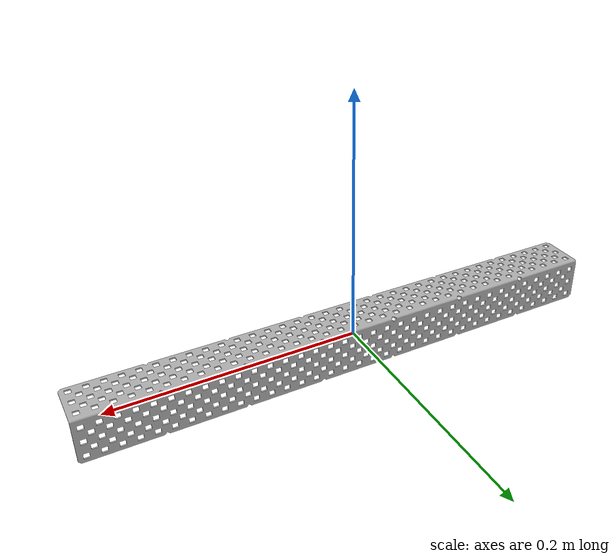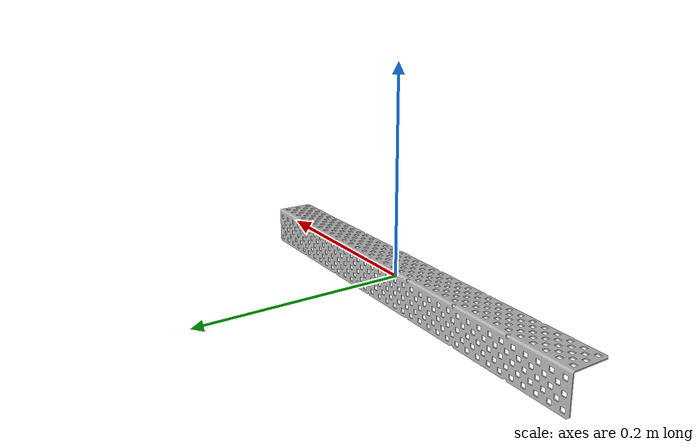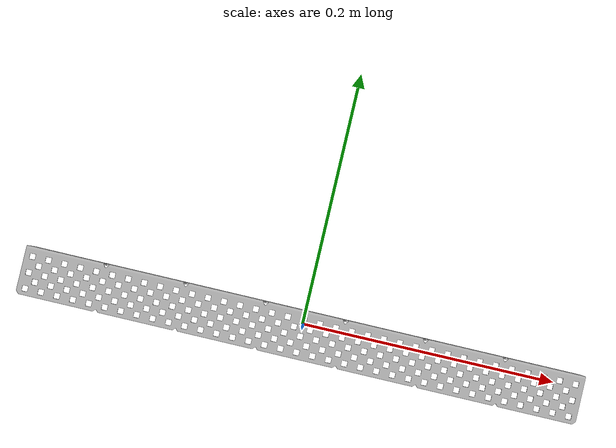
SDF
<?xml version='1.0'?>
<sdf version="1.4">
	<model name="Angle_3x3x35">
		<pose>0 0 0 0 0 0</pose>
		<static>true</static>
		<link name="body">
			<inertial>
				<mass>0.353</mass>
				<inertia>
					<ixx>1</ixx>
					<ixy>0</ixy>
					<ixz>0</ixz>
					<iyy>1</iyy>
					<iyz>0</iyz>
					<izz>1"</izz>
				</inertia>
			</inertial>
			<collision name="collision">
				<geometry>
					<box>
						<size>0.1778 0.0508 0.0508</size>
					</box>
				</geometry>
			</collision>
			<visual name="visual">
				<geometry>
					<mesh><uri>model://Angel_3x3x35/Angle_3x3x35.dae</uri></mesh>
				</geometry>
			</visual>
		</link>
	</model>
</sdf>
